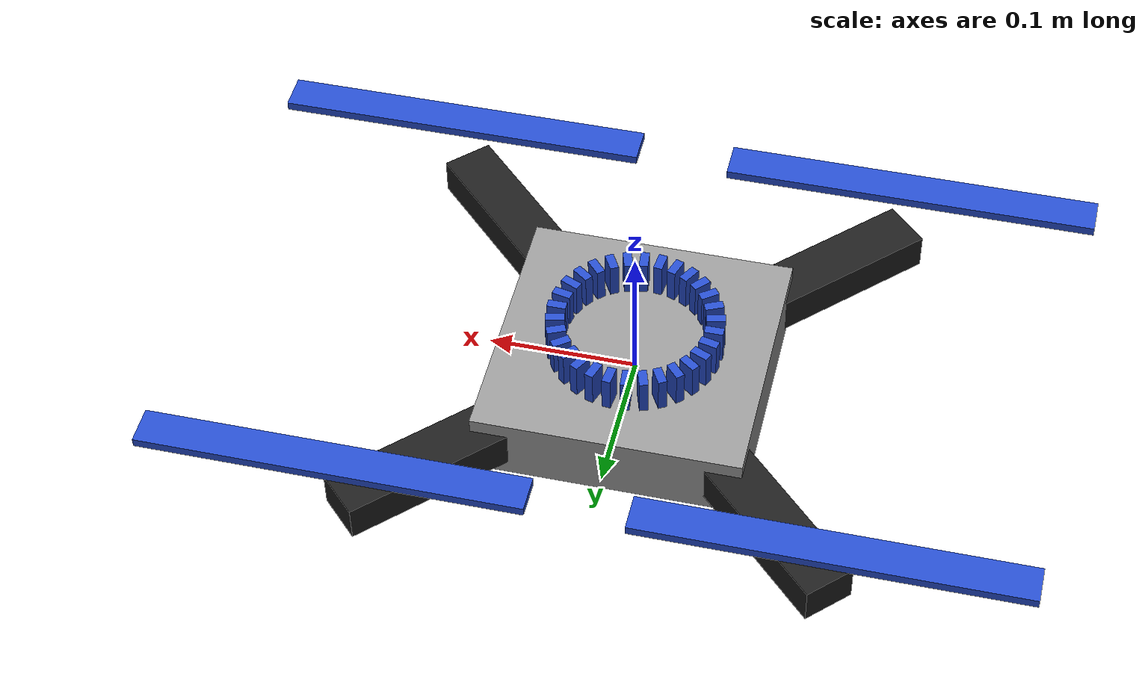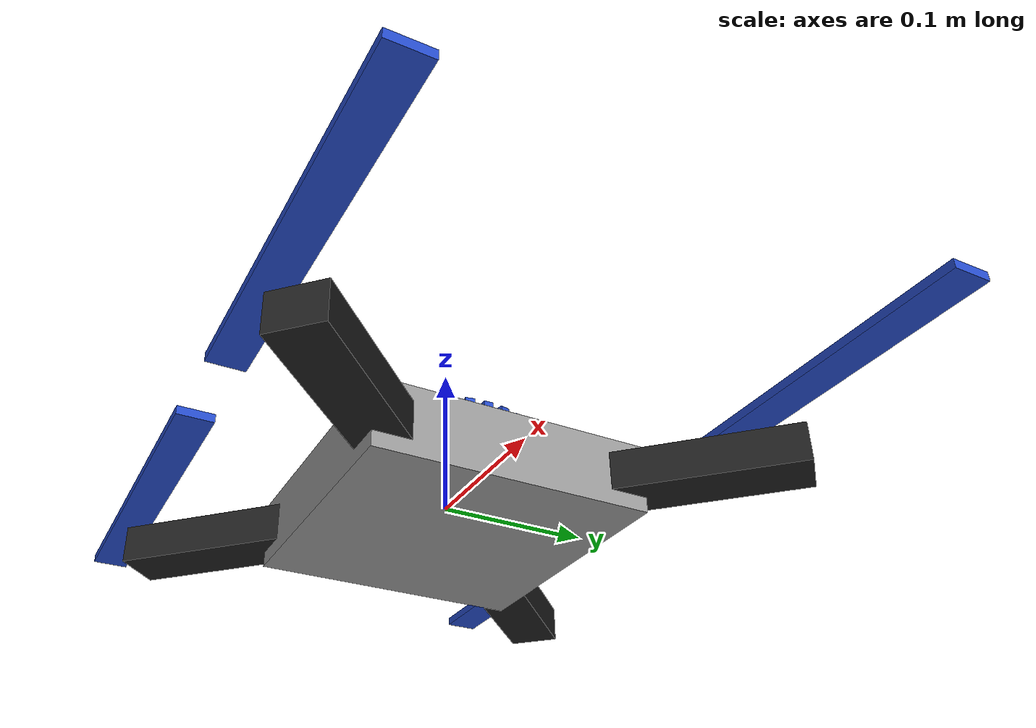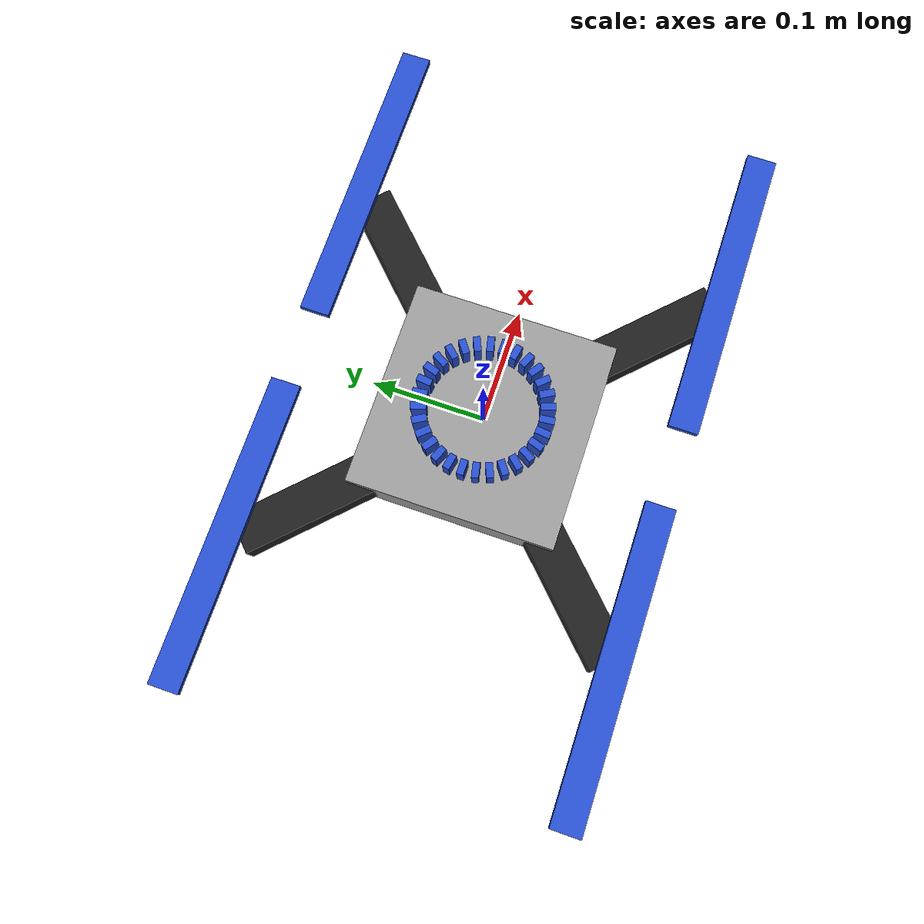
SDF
<?xml version="1.0" ?>

<sdf version="1.5">
  <model name="pendulum_quadcopter">
    <include>
      <uri>model://pendulum_quadcopter_base</uri>
      <name>pendulum_quadcopter_base</name>
      <pose>0 0 0 0 0 0</pose>
    </include>

    <include>
      <uri>model://pendulum_quadcopter_prop</uri>
      <name>pendulum_quadcopter_prop_0</name>
      <pose>0.1591 -0.1591 0.045 0 0 0</pose>
    </include>

    <joint name="pendulum_quadcopter_prop_0_joint" type="revolute">
      <parent>pendulum_quadcopter_base::platform_base</parent>
      <child>pendulum_quadcopter_prop_0::prop</child>
      <axis>
        <xyz>0 0 1</xyz>
        <limit>
          <lower>-1e+16</lower>
          <upper>1e+16</upper>
        </limit>
        <dynamics>
          <damping>0.00001</damping>
        </dynamics>
        <use_parent_model_frame>1</use_parent_model_frame>
      </axis>
    </joint>

    <plugin name="pendulum_quadcopter_prop_0_plugin" filename="librotors_gazebo_motor_model.so">
      <robotNamespace></robotNamespace>
      <jointName>pendulum_quadcopter_prop_0_joint</jointName>
      <linkName>pendulum_quadcopter_prop_0::prop</linkName>
      <turningDirection>ccw</turningDirection>
      <timeConstantUp>0.0125</timeConstantUp>
      <timeConstantDown>0.025</timeConstantDown>
      <maxRotVelocity>1000</maxRotVelocity>
      <motorConstant>8.599e-06</motorConstant>
      <momentConstant>0.1</momentConstant>
      <commandSubTopic>/gazebo/command/prop_speed</commandSubTopic>
      <motorNumber>0</motorNumber>
      <rotorDragCoefficient>0.000806428</rotorDragCoefficient>
      <rollingMomentCoefficient>1e-06</rollingMomentCoefficient>
      <motorSpeedPubTopic>prop_speed/0</motorSpeedPubTopic>
      <rotorVelocitySlowdownSim>10</rotorVelocitySlowdownSim>
    </plugin>

    <include>
      <uri>model://pendulum_quadcopter_prop</uri>
      <name>pendulum_quadcopter_prop_1</name>
      <pose>-0.1591 -0.1591 0.045 0 0 0</pose>
    </include>

    <joint name="pendulum_quadcopter_prop_1_joint" type="revolute">
      <parent>pendulum_quadcopter_base::platform_base</parent>
      <child>pendulum_quadcopter_prop_1::prop</child>
      <axis>
        <xyz>0 0 1</xyz>
        <limit>
          <lower>-1e+16</lower>
          <upper>1e+16</upper>
        </limit>
        <dynamics>
          <damping>0.00001</damping>
        </dynamics>
        <use_parent_model_frame>1</use_parent_model_frame>
      </axis>
    </joint>

    <plugin name="pendulum_quadcopter_prop_1_plugin" filename="librotors_gazebo_motor_model.so">
      <robotNamespace></robotNamespace>
      <jointName>pendulum_quadcopter_prop_1_joint</jointName>
      <linkName>pendulum_quadcopter_prop_1::prop</linkName>
      <turningDirection>cw</turningDirection>
      <timeConstantUp>0.0125</timeConstantUp>
      <timeConstantDown>0.025</timeConstantDown>
      <maxRotVelocity>1000</maxRotVelocity>
      <motorConstant>8.599e-06</motorConstant>
      <momentConstant>0.1</momentConstant>
      <commandSubTopic>/gazebo/command/prop_speed</commandSubTopic>
      <motorNumber>1</motorNumber>
      <rotorDragCoefficient>0.000806428</rotorDragCoefficient>
      <rollingMomentCoefficient>1e-06</rollingMomentCoefficient>
      <motorSpeedPubTopic>prop_speed/1</motorSpeedPubTopic>
      <rotorVelocitySlowdownSim>10</rotorVelocitySlowdownSim>
    </plugin>

    <include>
      <uri>model://pendulum_quadcopter_prop</uri>
      <name>pendulum_quadcopter_prop_2</name>
      <pose>-0.1591 0.1591 0.045 0 0 3.141592653589793</pose>
    </include>

    <joint name="pendulum_quadcopter_prop_2_joint" type="revolute">
      <parent>pendulum_quadcopter_base::platform_base</parent>
      <child>pendulum_quadcopter_prop_2::prop</child>
      <axis>
        <xyz>0 0 1</xyz>
        <limit>
          <lower>-1e+16</lower>
          <upper>1e+16</upper>
        </limit>
        <dynamics>
          <damping>0.00001</damping>
        </dynamics>
        <use_parent_model_frame>1</use_parent_model_frame>
      </axis>
    </joint>

    <plugin name="pendulum_quadcopter_prop_2_plugin" filename="librotors_gazebo_motor_model.so">
      <robotNamespace></robotNamespace>
      <jointName>pendulum_quadcopter_prop_2_joint</jointName>
      <linkName>pendulum_quadcopter_prop_2::prop</linkName>
      <turningDirection>ccw</turningDirection>
      <timeConstantUp>0.0125</timeConstantUp>
      <timeConstantDown>0.025</timeConstantDown>
      <maxRotVelocity>1000</maxRotVelocity>
      <motorConstant>8.599e-06</motorConstant>
      <momentConstant>0.1</momentConstant>
      <commandSubTopic>/gazebo/command/prop_speed</commandSubTopic>
      <motorNumber>2</motorNumber>
      <rotorDragCoefficient>0.000806428</rotorDragCoefficient>
      <rollingMomentCoefficient>1e-06</rollingMomentCoefficient>
      <motorSpeedPubTopic>prop_speed/2</motorSpeedPubTopic>
      <rotorVelocitySlowdownSim>10</rotorVelocitySlowdownSim>
    </plugin>

    <include>
      <uri>model://pendulum_quadcopter_prop</uri>
      <name>pendulum_quadcopter_prop_3</name>
      <pose>0.1591 0.1591 0.045 0 0 3.141592653589793</pose>
    </include>

    <joint name="pendulum_quadcopter_prop_3_joint" type="revolute">
      <parent>pendulum_quadcopter_base::platform_base</parent>
      <child>pendulum_quadcopter_prop_3::prop</child>
      <axis>
        <xyz>0 0 1</xyz>
        <limit>
          <lower>-1e+16</lower>
          <upper>1e+16</upper>
        </limit>
        <dynamics>
          <damping>0.00001</damping>
        </dynamics>
        <use_parent_model_frame>1</use_parent_model_frame>
      </axis>
    </joint>

    <plugin name="pendulum_quadcopter_prop_3_plugin" filename="librotors_gazebo_motor_model.so">
      <robotNamespace></robotNamespace>
      <jointName>pendulum_quadcopter_prop_3_joint</jointName>
      <linkName>pendulum_quadcopter_prop_3::prop</linkName>
      <turningDirection>cw</turningDirection>
      <timeConstantUp>0.0125</timeConstantUp>
      <timeConstantDown>0.025</timeConstantDown>
      <maxRotVelocity>1000</maxRotVelocity>
      <motorConstant>8.599e-06</motorConstant>
      <momentConstant>0.1</momentConstant>
      <commandSubTopic>/gazebo/command/prop_speed</commandSubTopic>
      <motorNumber>3</motorNumber>
      <rotorDragCoefficient>0.000806428</rotorDragCoefficient>
      <rollingMomentCoefficient>1e-06</rollingMomentCoefficient>
      <motorSpeedPubTopic>prop_speed/3</motorSpeedPubTopic>
      <rotorVelocitySlowdownSim>10</rotorVelocitySlowdownSim>
    </plugin>

    <plugin name="ArduRotorNormPlugin" filename="libArduRotorNormPlugin.so">
      <fdm_addr>127.0.0.1</fdm_addr>
      <fdm_port_in>9002</fdm_port_in>
      <fdm_port_out>9003</fdm_port_out>
      <modelXYZToAirplaneXForwardZDown>0 0 0 3.141593 0 0</modelXYZToAirplaneXForwardZDown>
      <gazeboXYZToNED>0 0 0 3.141593 0 0</gazeboXYZToNED>
      <motor_num>4</motor_num>
      <servo_num>0</servo_num>
      <motor_pub>/gazebo/command/prop_speed</motor_pub>
      <imuName>pendulum_quadcopter_base::imu_link::imu_sensor</imuName>
      <connectionTimeoutMaxCount>5</connectionTimeoutMaxCount>
    </plugin>
  </model>
</sdf>

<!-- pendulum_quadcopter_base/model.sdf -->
<sdf version="1.5">
  <model name="pendulum_quadcopter_platform">
    <link name="platform_base">
      <pose>0 0 0 0 0 0</pose>
      <inertial>
        <pose>0 0 0 0 0 0</pose>
        <mass>1.1</mass>
        <inertia>
          <ixx>0.018</ixx>
          <iyy>0.018</iyy>
          <izz>0.032</izz>
          <ixy>0</ixy>
          <ixz>0</ixz>
          <iyz>0</iyz>
        </inertia>
      </inertial>

      <collision name="body_collision">
        <pose>0 0 0 0 0 0</pose>
        <geometry>
          <box>
            <size>0.18 0.18 0.045</size>
          </box>
        </geometry>
        <surface>
          <contact>
            <ode>
              <max_vel>100.0</max_vel>
              <min_depth>0.001</min_depth>
            </ode>
          </contact>
          <friction>
            <ode>
              <mu>100000.0</mu>
              <mu2>100000.0</mu2>
            </ode>
          </friction>
        </surface>
      </collision>
      <visual name="body_visual">
        <pose>0 0 0 0 0 0</pose>
        <geometry>
          <box>
            <size>0.18 0.18 0.045</size>
          </box>
        </geometry>
        <material>
          <script>
            <name>Gazebo/Grey</name>
          </script>
        </material>
      </visual>

      <collision name="arm_positive_collision">
        <pose>0 0 0 0 0 0.7853981633974483</pose>
        <geometry>
          <box>
            <size>0.45 0.035 0.025</size>
          </box>
        </geometry>
      </collision>
      <visual name="arm_positive_visual">
        <pose>0 0 0 0 0 0.7853981633974483</pose>
        <geometry>
          <box>
            <size>0.45 0.035 0.025</size>
          </box>
        </geometry>
        <material>
          <script>
            <name>Gazebo/Black</name>
          </script>
        </material>
      </visual>

      <collision name="arm_negative_collision">
        <pose>0 0 0 0 0 -0.7853981633974483</pose>
        <geometry>
          <box>
            <size>0.45 0.035 0.025</size>
          </box>
        </geometry>
      </collision>
      <visual name="arm_negative_visual">
        <pose>0 0 0 0 0 -0.7853981633974483</pose>
        <geometry>
          <box>
            <size>0.45 0.035 0.025</size>
          </box>
        </geometry>
        <material>
          <script>
            <name>Gazebo/Black</name>
          </script>
        </material>
      </visual>

      <collision name="pendulum_cup_collision_0">
        <pose>0.053000000000000005 0.0 0.035 0 0 0.0</pose>
        <geometry>
          <box>
            <size>0.012765338149086527 0.006 0.025</size>
          </box>
        </geometry>
        <surface>
          <contact>
            <ode>
              <max_vel>100.0</max_vel>
              <min_depth>0.001</min_depth>
            </ode>
          </contact>
          <friction>
            <ode>
              <mu>10.0</mu>
              <mu2>10.0</mu2>
            </ode>
          </friction>
        </surface>
      </collision>
      <visual name="pendulum_cup_visual_0">
        <pose>0.053000000000000005 0.0 0.035 0 0 0.0</pose>
        <geometry>
          <box>
            <size>0.012765338149086527 0.006 0.025</size>
          </box>
        </geometry>
        <material>
          <script>
            <name>Gazebo/Blue</name>
          </script>
        </material>
      </visual>

      <collision name="pendulum_cup_collision_1">
        <pose>0.05184182283889171 0.011019319613341245 0.035 0 0 0.20943951023931953</pose>
        <geometry>
          <box>
            <size>0.012765338149086527 0.006 0.025</size>
          </box>
        </geometry>
        <surface>
          <contact>
            <ode>
              <max_vel>100.0</max_vel>
              <min_depth>0.001</min_depth>
            </ode>
          </contact>
          <friction>
            <ode>
              <mu>10.0</mu>
              <mu2>10.0</mu2>
            </ode>
          </friction>
        </surface>
      </collision>
      <visual name="pendulum_cup_visual_1">
        <pose>0.05184182283889171 0.011019319613341245 0.035 0 0 0.20943951023931953</pose>
        <geometry>
          <box>
            <size>0.012765338149086527 0.006 0.025</size>
          </box>
        </geometry>
        <material>
          <script>
            <name>Gazebo/Blue</name>
          </script>
        </material>
      </visual>

      <collision name="pendulum_cup_collision_2">
        <pose>0.04841790925505785 0.02155704208301741 0.035 0 0 0.41887902047863906</pose>
        <geometry>
          <box>
            <size>0.012765338149086527 0.006 0.025</size>
          </box>
        </geometry>
        <surface>
          <contact>
            <ode>
              <max_vel>100.0</max_vel>
              <min_depth>0.001</min_depth>
            </ode>
          </contact>
          <friction>
            <ode>
              <mu>10.0</mu>
              <mu2>10.0</mu2>
            </ode>
          </friction>
        </surface>
      </collision>
      <visual name="pendulum_cup_visual_2">
        <pose>0.04841790925505785 0.02155704208301741 0.035 0 0 0.41887902047863906</pose>
        <geometry>
          <box>
            <size>0.012765338149086527 0.006 0.025</size>
          </box>
        </geometry>
        <material>
          <script>
            <name>Gazebo/Blue</name>
          </script>
        </material>
      </visual>

      <collision name="pendulum_cup_collision_3">
        <pose>0.04287790070187222 0.03115261837150108 0.035 0 0 0.6283185307179586</pose>
        <geometry>
          <box>
            <size>0.012765338149086527 0.006 0.025</size>
          </box>
        </geometry>
        <surface>
          <contact>
            <ode>
              <max_vel>100.0</max_vel>
              <min_depth>0.001</min_depth>
            </ode>
          </contact>
          <friction>
            <ode>
              <mu>10.0</mu>
              <mu2>10.0</mu2>
            </ode>
          </friction>
        </surface>
      </collision>
      <visual name="pendulum_cup_visual_3">
        <pose>0.04287790070187222 0.03115261837150108 0.035 0 0 0.6283185307179586</pose>
        <geometry>
          <box>
            <size>0.012765338149086527 0.006 0.025</size>
          </box>
        </geometry>
        <material>
          <script>
            <name>Gazebo/Blue</name>
          </script>
        </material>
      </visual>

      <collision name="pendulum_cup_collision_4">
        <pose>0.03546392213701949 0.03938667575030189 0.035 0 0 0.8377580409572781</pose>
        <geometry>
          <box>
            <size>0.012765338149086527 0.006 0.025</size>
          </box>
        </geometry>
        <surface>
          <contact>
            <ode>
              <max_vel>100.0</max_vel>
              <min_depth>0.001</min_depth>
            </ode>
          </contact>
          <friction>
            <ode>
              <mu>10.0</mu>
              <mu2>10.0</mu2>
            </ode>
          </friction>
        </surface>
      </collision>
      <visual name="pendulum_cup_visual_4">
        <pose>0.03546392213701949 0.03938667575030189 0.035 0 0 0.8377580409572781</pose>
        <geometry>
          <box>
            <size>0.012765338149086527 0.006 0.025</size>
          </box>
        </geometry>
        <material>
          <script>
            <name>Gazebo/Blue</name>
          </script>
        </material>
      </visual>

      <collision name="pendulum_cup_collision_5">
        <pose>0.02650000000000001 0.04589934640057525 0.035 0 0 1.0471975511965976</pose>
        <geometry>
          <box>
            <size>0.012765338149086527 0.006 0.025</size>
          </box>
        </geometry>
        <surface>
          <contact>
            <ode>
              <max_vel>100.0</max_vel>
              <min_depth>0.001</min_depth>
            </ode>
          </contact>
          <friction>
            <ode>
              <mu>10.0</mu>
              <mu2>10.0</mu2>
            </ode>
          </friction>
        </surface>
      </collision>
      <visual name="pendulum_cup_visual_5">
        <pose>0.02650000000000001 0.04589934640057525 0.035 0 0 1.0471975511965976</pose>
        <geometry>
          <box>
            <size>0.012765338149086527 0.006 0.025</size>
          </box>
        </geometry>
        <material>
          <script>
            <name>Gazebo/Blue</name>
          </script>
        </material>
      </visual>

      <collision name="pendulum_cup_collision_6">
        <pose>0.016377900701872217 0.050405995363643145 0.035 0 0 1.2566370614359172</pose>
        <geometry>
          <box>
            <size>0.012765338149086527 0.006 0.025</size>
          </box>
        </geometry>
        <surface>
          <contact>
            <ode>
              <max_vel>100.0</max_vel>
              <min_depth>0.001</min_depth>
            </ode>
          </contact>
          <friction>
            <ode>
              <mu>10.0</mu>
              <mu2>10.0</mu2>
            </ode>
          </friction>
        </surface>
      </collision>
      <visual name="pendulum_cup_visual_6">
        <pose>0.016377900701872217 0.050405995363643145 0.035 0 0 1.2566370614359172</pose>
        <geometry>
          <box>
            <size>0.012765338149086527 0.006 0.025</size>
          </box>
        </geometry>
        <material>
          <script>
            <name>Gazebo/Blue</name>
          </script>
        </material>
      </visual>

      <collision name="pendulum_cup_collision_7">
        <pose>0.0055400085531856335 0.05270966045451849 0.035 0 0 1.4660765716752369</pose>
        <geometry>
          <box>
            <size>0.012765338149086527 0.006 0.025</size>
          </box>
        </geometry>
        <surface>
          <contact>
            <ode>
              <max_vel>100.0</max_vel>
              <min_depth>0.001</min_depth>
            </ode>
          </contact>
          <friction>
            <ode>
              <mu>10.0</mu>
              <mu2>10.0</mu2>
            </ode>
          </friction>
        </surface>
      </collision>
      <visual name="pendulum_cup_visual_7">
        <pose>0.0055400085531856335 0.05270966045451849 0.035 0 0 1.4660765716752369</pose>
        <geometry>
          <box>
            <size>0.012765338149086527 0.006 0.025</size>
          </box>
        </geometry>
        <material>
          <script>
            <name>Gazebo/Blue</name>
          </script>
        </material>
      </visual>

      <collision name="pendulum_cup_collision_8">
        <pose>-0.005540008553185627 0.0527096604545185 0.035 0 0 1.6755160819145563</pose>
        <geometry>
          <box>
            <size>0.012765338149086527 0.006 0.025</size>
          </box>
        </geometry>
        <surface>
          <contact>
            <ode>
              <max_vel>100.0</max_vel>
              <min_depth>0.001</min_depth>
            </ode>
          </contact>
          <friction>
            <ode>
              <mu>10.0</mu>
              <mu2>10.0</mu2>
            </ode>
          </friction>
        </surface>
      </collision>
      <visual name="pendulum_cup_visual_8">
        <pose>-0.005540008553185627 0.0527096604545185 0.035 0 0 1.6755160819145563</pose>
        <geometry>
          <box>
            <size>0.012765338149086527 0.006 0.025</size>
          </box>
        </geometry>
        <material>
          <script>
            <name>Gazebo/Blue</name>
          </script>
        </material>
      </visual>

      <collision name="pendulum_cup_collision_9">
        <pose>-0.01637790070187221 0.050405995363643145 0.035 0 0 1.8849555921538759</pose>
        <geometry>
          <box>
            <size>0.012765338149086527 0.006 0.025</size>
          </box>
        </geometry>
        <surface>
          <contact>
            <ode>
              <max_vel>100.0</max_vel>
              <min_depth>0.001</min_depth>
            </ode>
          </contact>
          <friction>
            <ode>
              <mu>10.0</mu>
              <mu2>10.0</mu2>
            </ode>
          </friction>
        </surface>
      </collision>
      <visual name="pendulum_cup_visual_9">
        <pose>-0.01637790070187221 0.050405995363643145 0.035 0 0 1.8849555921538759</pose>
        <geometry>
          <box>
            <size>0.012765338149086527 0.006 0.025</size>
          </box>
        </geometry>
        <material>
          <script>
            <name>Gazebo/Blue</name>
          </script>
        </material>
      </visual>

      <collision name="pendulum_cup_collision_10">
        <pose>-0.026499999999999992 0.045899346400575254 0.035 0 0 2.0943951023931953</pose>
        <geometry>
          <box>
            <size>0.012765338149086527 0.006 0.025</size>
          </box>
        </geometry>
        <surface>
          <contact>
            <ode>
              <max_vel>100.0</max_vel>
              <min_depth>0.001</min_depth>
            </ode>
          </contact>
          <friction>
            <ode>
              <mu>10.0</mu>
              <mu2>10.0</mu2>
            </ode>
          </friction>
        </surface>
      </collision>
      <visual name="pendulum_cup_visual_10">
        <pose>-0.026499999999999992 0.045899346400575254 0.035 0 0 2.0943951023931953</pose>
        <geometry>
          <box>
            <size>0.012765338149086527 0.006 0.025</size>
          </box>
        </geometry>
        <material>
          <script>
            <name>Gazebo/Blue</name>
          </script>
        </material>
      </visual>

      <collision name="pendulum_cup_collision_11">
        <pose>-0.035463922137019474 0.039386675750301914 0.035 0 0 2.3038346126325147</pose>
        <geometry>
          <box>
            <size>0.012765338149086527 0.006 0.025</size>
          </box>
        </geometry>
        <surface>
          <contact>
            <ode>
              <max_vel>100.0</max_vel>
              <min_depth>0.001</min_depth>
            </ode>
          </contact>
          <friction>
            <ode>
              <mu>10.0</mu>
              <mu2>10.0</mu2>
            </ode>
          </friction>
        </surface>
      </collision>
      <visual name="pendulum_cup_visual_11">
        <pose>-0.035463922137019474 0.039386675750301914 0.035 0 0 2.3038346126325147</pose>
        <geometry>
          <box>
            <size>0.012765338149086527 0.006 0.025</size>
          </box>
        </geometry>
        <material>
          <script>
            <name>Gazebo/Blue</name>
          </script>
        </material>
      </visual>

      <collision name="pendulum_cup_collision_12">
        <pose>-0.04287790070187222 0.031152618371501087 0.035 0 0 2.5132741228718345</pose>
        <geometry>
          <box>
            <size>0.012765338149086527 0.006 0.025</size>
          </box>
        </geometry>
        <surface>
          <contact>
            <ode>
              <max_vel>100.0</max_vel>
              <min_depth>0.001</min_depth>
            </ode>
          </contact>
          <friction>
            <ode>
              <mu>10.0</mu>
              <mu2>10.0</mu2>
            </ode>
          </friction>
        </surface>
      </collision>
      <visual name="pendulum_cup_visual_12">
        <pose>-0.04287790070187222 0.031152618371501087 0.035 0 0 2.5132741228718345</pose>
        <geometry>
          <box>
            <size>0.012765338149086527 0.006 0.025</size>
          </box>
        </geometry>
        <material>
          <script>
            <name>Gazebo/Blue</name>
          </script>
        </material>
      </visual>

      <collision name="pendulum_cup_collision_13">
        <pose>-0.04841790925505786 0.021557042083017404 0.035 0 0 2.7227136331111543</pose>
        <geometry>
          <box>
            <size>0.012765338149086527 0.006 0.025</size>
          </box>
        </geometry>
        <surface>
          <contact>
            <ode>
              <max_vel>100.0</max_vel>
              <min_depth>0.001</min_depth>
            </ode>
          </contact>
          <friction>
            <ode>
              <mu>10.0</mu>
              <mu2>10.0</mu2>
            </ode>
          </friction>
        </surface>
      </collision>
      <visual name="pendulum_cup_visual_13">
        <pose>-0.04841790925505786 0.021557042083017404 0.035 0 0 2.7227136331111543</pose>
        <geometry>
          <box>
            <size>0.012765338149086527 0.006 0.025</size>
          </box>
        </geometry>
        <material>
          <script>
            <name>Gazebo/Blue</name>
          </script>
        </material>
      </visual>

      <collision name="pendulum_cup_collision_14">
        <pose>-0.05184182283889171 0.011019319613341245 0.035 0 0 2.9321531433504737</pose>
        <geometry>
          <box>
            <size>0.012765338149086527 0.006 0.025</size>
          </box>
        </geometry>
        <surface>
          <contact>
            <ode>
              <max_vel>100.0</max_vel>
              <min_depth>0.001</min_depth>
            </ode>
          </contact>
          <friction>
            <ode>
              <mu>10.0</mu>
              <mu2>10.0</mu2>
            </ode>
          </friction>
        </surface>
      </collision>
      <visual name="pendulum_cup_visual_14">
        <pose>-0.05184182283889171 0.011019319613341245 0.035 0 0 2.9321531433504737</pose>
        <geometry>
          <box>
            <size>0.012765338149086527 0.006 0.025</size>
          </box>
        </geometry>
        <material>
          <script>
            <name>Gazebo/Blue</name>
          </script>
        </material>
      </visual>

      <collision name="pendulum_cup_collision_15">
        <pose>-0.053000000000000005 3.00273561575343e-17 0.035 0 0 3.1415926535897927</pose>
        <geometry>
          <box>
            <size>0.012765338149086527 0.006 0.025</size>
          </box>
        </geometry>
        <surface>
          <contact>
            <ode>
              <max_vel>100.0</max_vel>
              <min_depth>0.001</min_depth>
            </ode>
          </contact>
          <friction>
            <ode>
              <mu>10.0</mu>
              <mu2>10.0</mu2>
            </ode>
          </friction>
        </surface>
      </collision>
      <visual name="pendulum_cup_visual_15">
        <pose>-0.053000000000000005 3.00273561575343e-17 0.035 0 0 3.1415926535897927</pose>
        <geometry>
          <box>
            <size>0.012765338149086527 0.006 0.025</size>
          </box>
        </geometry>
        <material>
          <script>
            <name>Gazebo/Blue</name>
          </script>
        </material>
      </visual>

      <collision name="pendulum_cup_collision_16">
        <pose>-0.05184182283889171 -0.011019319613341232 0.035 0 0 3.3510321638291125</pose>
        <geometry>
          <box>
            <size>0.012765338149086527 0.006 0.025</size>
          </box>
        </geometry>
        <surface>
          <contact>
            <ode>
              <max_vel>100.0</max_vel>
              <min_depth>0.001</min_depth>
            </ode>
          </contact>
          <friction>
            <ode>
              <mu>10.0</mu>
              <mu2>10.0</mu2>
            </ode>
          </friction>
        </surface>
      </collision>
      <visual name="pendulum_cup_visual_16">
        <pose>-0.05184182283889171 -0.011019319613341232 0.035 0 0 3.3510321638291125</pose>
        <geometry>
          <box>
            <size>0.012765338149086527 0.006 0.025</size>
          </box>
        </geometry>
        <material>
          <script>
            <name>Gazebo/Blue</name>
          </script>
        </material>
      </visual>

      <collision name="pendulum_cup_collision_17">
        <pose>-0.04841790925505785 -0.021557042083017414 0.035 0 0 3.5604716740684323</pose>
        <geometry>
          <box>
            <size>0.012765338149086527 0.006 0.025</size>
          </box>
        </geometry>
        <surface>
          <contact>
            <ode>
              <max_vel>100.0</max_vel>
              <min_depth>0.001</min_depth>
            </ode>
          </contact>
          <friction>
            <ode>
              <mu>10.0</mu>
              <mu2>10.0</mu2>
            </ode>
          </friction>
        </surface>
      </collision>
      <visual name="pendulum_cup_visual_17">
        <pose>-0.04841790925505785 -0.021557042083017414 0.035 0 0 3.5604716740684323</pose>
        <geometry>
          <box>
            <size>0.012765338149086527 0.006 0.025</size>
          </box>
        </geometry>
        <material>
          <script>
            <name>Gazebo/Blue</name>
          </script>
        </material>
      </visual>

      <collision name="pendulum_cup_collision_18">
        <pose>-0.042877900701872224 -0.031152618371501073 0.035 0 0 3.7699111843077517</pose>
        <geometry>
          <box>
            <size>0.012765338149086527 0.006 0.025</size>
          </box>
        </geometry>
        <surface>
          <contact>
            <ode>
              <max_vel>100.0</max_vel>
              <min_depth>0.001</min_depth>
            </ode>
          </contact>
          <friction>
            <ode>
              <mu>10.0</mu>
              <mu2>10.0</mu2>
            </ode>
          </friction>
        </surface>
      </collision>
      <visual name="pendulum_cup_visual_18">
        <pose>-0.042877900701872224 -0.031152618371501073 0.035 0 0 3.7699111843077517</pose>
        <geometry>
          <box>
            <size>0.012765338149086527 0.006 0.025</size>
          </box>
        </geometry>
        <material>
          <script>
            <name>Gazebo/Blue</name>
          </script>
        </material>
      </visual>

      <collision name="pendulum_cup_collision_19">
        <pose>-0.0354639221370195 -0.039386675750301886 0.035 0 0 3.979350694547071</pose>
        <geometry>
          <box>
            <size>0.012765338149086527 0.006 0.025</size>
          </box>
        </geometry>
        <surface>
          <contact>
            <ode>
              <max_vel>100.0</max_vel>
              <min_depth>0.001</min_depth>
            </ode>
          </contact>
          <friction>
            <ode>
              <mu>10.0</mu>
              <mu2>10.0</mu2>
            </ode>
          </friction>
        </surface>
      </collision>
      <visual name="pendulum_cup_visual_19">
        <pose>-0.0354639221370195 -0.039386675750301886 0.035 0 0 3.979350694547071</pose>
        <geometry>
          <box>
            <size>0.012765338149086527 0.006 0.025</size>
          </box>
        </geometry>
        <material>
          <script>
            <name>Gazebo/Blue</name>
          </script>
        </material>
      </visual>

      <collision name="pendulum_cup_collision_20">
        <pose>-0.026500000000000027 -0.04589934640057524 0.035 0 0 4.1887902047863905</pose>
        <geometry>
          <box>
            <size>0.012765338149086527 0.006 0.025</size>
          </box>
        </geometry>
        <surface>
          <contact>
            <ode>
              <max_vel>100.0</max_vel>
              <min_depth>0.001</min_depth>
            </ode>
          </contact>
          <friction>
            <ode>
              <mu>10.0</mu>
              <mu2>10.0</mu2>
            </ode>
          </friction>
        </surface>
      </collision>
      <visual name="pendulum_cup_visual_20">
        <pose>-0.026500000000000027 -0.04589934640057524 0.035 0 0 4.1887902047863905</pose>
        <geometry>
          <box>
            <size>0.012765338149086527 0.006 0.025</size>
          </box>
        </geometry>
        <material>
          <script>
            <name>Gazebo/Blue</name>
          </script>
        </material>
      </visual>

      <collision name="pendulum_cup_collision_21">
        <pose>-0.01637790070187222 -0.050405995363643145 0.035 0 0 4.39822971502571</pose>
        <geometry>
          <box>
            <size>0.012765338149086527 0.006 0.025</size>
          </box>
        </geometry>
        <surface>
          <contact>
            <ode>
              <max_vel>100.0</max_vel>
              <min_depth>0.001</min_depth>
            </ode>
          </contact>
          <friction>
            <ode>
              <mu>10.0</mu>
              <mu2>10.0</mu2>
            </ode>
          </friction>
        </surface>
      </collision>
      <visual name="pendulum_cup_visual_21">
        <pose>-0.01637790070187222 -0.050405995363643145 0.035 0 0 4.39822971502571</pose>
        <geometry>
          <box>
            <size>0.012765338149086527 0.006 0.025</size>
          </box>
        </geometry>
        <material>
          <script>
            <name>Gazebo/Blue</name>
          </script>
        </material>
      </visual>

      <collision name="pendulum_cup_collision_22">
        <pose>-0.005540008553185675 -0.05270966045451849 0.035 0 0 4.607669225265029</pose>
        <geometry>
          <box>
            <size>0.012765338149086527 0.006 0.025</size>
          </box>
        </geometry>
        <surface>
          <contact>
            <ode>
              <max_vel>100.0</max_vel>
              <min_depth>0.001</min_depth>
            </ode>
          </contact>
          <friction>
            <ode>
              <mu>10.0</mu>
              <mu2>10.0</mu2>
            </ode>
          </friction>
        </surface>
      </collision>
      <visual name="pendulum_cup_visual_22">
        <pose>-0.005540008553185675 -0.05270966045451849 0.035 0 0 4.607669225265029</pose>
        <geometry>
          <box>
            <size>0.012765338149086527 0.006 0.025</size>
          </box>
        </geometry>
        <material>
          <script>
            <name>Gazebo/Blue</name>
          </script>
        </material>
      </visual>

      <collision name="pendulum_cup_collision_23">
        <pose>0.005540008553185609 -0.0527096604545185 0.035 0 0 4.817108735504349</pose>
        <geometry>
          <box>
            <size>0.012765338149086527 0.006 0.025</size>
          </box>
        </geometry>
        <surface>
          <contact>
            <ode>
              <max_vel>100.0</max_vel>
              <min_depth>0.001</min_depth>
            </ode>
          </contact>
          <friction>
            <ode>
              <mu>10.0</mu>
              <mu2>10.0</mu2>
            </ode>
          </friction>
        </surface>
      </collision>
      <visual name="pendulum_cup_visual_23">
        <pose>0.005540008553185609 -0.0527096604545185 0.035 0 0 4.817108735504349</pose>
        <geometry>
          <box>
            <size>0.012765338149086527 0.006 0.025</size>
          </box>
        </geometry>
        <material>
          <script>
            <name>Gazebo/Blue</name>
          </script>
        </material>
      </visual>

      <collision name="pendulum_cup_collision_24">
        <pose>0.016377900701872204 -0.050405995363643145 0.035 0 0 5.026548245743669</pose>
        <geometry>
          <box>
            <size>0.012765338149086527 0.006 0.025</size>
          </box>
        </geometry>
        <surface>
          <contact>
            <ode>
              <max_vel>100.0</max_vel>
              <min_depth>0.001</min_depth>
            </ode>
          </contact>
          <friction>
            <ode>
              <mu>10.0</mu>
              <mu2>10.0</mu2>
            </ode>
          </friction>
        </surface>
      </collision>
      <visual name="pendulum_cup_visual_24">
        <pose>0.016377900701872204 -0.050405995363643145 0.035 0 0 5.026548245743669</pose>
        <geometry>
          <box>
            <size>0.012765338149086527 0.006 0.025</size>
          </box>
        </geometry>
        <material>
          <script>
            <name>Gazebo/Blue</name>
          </script>
        </material>
      </visual>

      <collision name="pendulum_cup_collision_25">
        <pose>0.02650000000000001 -0.04589934640057525 0.035 0 0 5.235987755982989</pose>
        <geometry>
          <box>
            <size>0.012765338149086527 0.006 0.025</size>
          </box>
        </geometry>
        <surface>
          <contact>
            <ode>
              <max_vel>100.0</max_vel>
              <min_depth>0.001</min_depth>
            </ode>
          </contact>
          <friction>
            <ode>
              <mu>10.0</mu>
              <mu2>10.0</mu2>
            </ode>
          </friction>
        </surface>
      </collision>
      <visual name="pendulum_cup_visual_25">
        <pose>0.02650000000000001 -0.04589934640057525 0.035 0 0 5.235987755982989</pose>
        <geometry>
          <box>
            <size>0.012765338149086527 0.006 0.025</size>
          </box>
        </geometry>
        <material>
          <script>
            <name>Gazebo/Blue</name>
          </script>
        </material>
      </visual>

      <collision name="pendulum_cup_collision_26">
        <pose>0.0354639221370195 -0.039386675750301886 0.035 0 0 5.445427266222309</pose>
        <geometry>
          <box>
            <size>0.012765338149086527 0.006 0.025</size>
          </box>
        </geometry>
        <surface>
          <contact>
            <ode>
              <max_vel>100.0</max_vel>
              <min_depth>0.001</min_depth>
            </ode>
          </contact>
          <friction>
            <ode>
              <mu>10.0</mu>
              <mu2>10.0</mu2>
            </ode>
          </friction>
        </surface>
      </collision>
      <visual name="pendulum_cup_visual_26">
        <pose>0.0354639221370195 -0.039386675750301886 0.035 0 0 5.445427266222309</pose>
        <geometry>
          <box>
            <size>0.012765338149086527 0.006 0.025</size>
          </box>
        </geometry>
        <material>
          <script>
            <name>Gazebo/Blue</name>
          </script>
        </material>
      </visual>

      <collision name="pendulum_cup_collision_27">
        <pose>0.04287790070187222 -0.03115261837150109 0.035 0 0 5.654866776461628</pose>
        <geometry>
          <box>
            <size>0.012765338149086527 0.006 0.025</size>
          </box>
        </geometry>
        <surface>
          <contact>
            <ode>
              <max_vel>100.0</max_vel>
              <min_depth>0.001</min_depth>
            </ode>
          </contact>
          <friction>
            <ode>
              <mu>10.0</mu>
              <mu2>10.0</mu2>
            </ode>
          </friction>
        </surface>
      </collision>
      <visual name="pendulum_cup_visual_27">
        <pose>0.04287790070187222 -0.03115261837150109 0.035 0 0 5.654866776461628</pose>
        <geometry>
          <box>
            <size>0.012765338149086527 0.006 0.025</size>
          </box>
        </geometry>
        <material>
          <script>
            <name>Gazebo/Blue</name>
          </script>
        </material>
      </visual>

      <collision name="pendulum_cup_collision_28">
        <pose>0.04841790925505786 -0.02155704208301741 0.035 0 0 5.8643062867009474</pose>
        <geometry>
          <box>
            <size>0.012765338149086527 0.006 0.025</size>
          </box>
        </geometry>
        <surface>
          <contact>
            <ode>
              <max_vel>100.0</max_vel>
              <min_depth>0.001</min_depth>
            </ode>
          </contact>
          <friction>
            <ode>
              <mu>10.0</mu>
              <mu2>10.0</mu2>
            </ode>
          </friction>
        </surface>
      </collision>
      <visual name="pendulum_cup_visual_28">
        <pose>0.04841790925505786 -0.02155704208301741 0.035 0 0 5.8643062867009474</pose>
        <geometry>
          <box>
            <size>0.012765338149086527 0.006 0.025</size>
          </box>
        </geometry>
        <material>
          <script>
            <name>Gazebo/Blue</name>
          </script>
        </material>
      </visual>

      <collision name="pendulum_cup_collision_29">
        <pose>0.05184182283889171 -0.011019319613341226 0.035 0 0 6.073745796940267</pose>
        <geometry>
          <box>
            <size>0.012765338149086527 0.006 0.025</size>
          </box>
        </geometry>
        <surface>
          <contact>
            <ode>
              <max_vel>100.0</max_vel>
              <min_depth>0.001</min_depth>
            </ode>
          </contact>
          <friction>
            <ode>
              <mu>10.0</mu>
              <mu2>10.0</mu2>
            </ode>
          </friction>
        </surface>
      </collision>
      <visual name="pendulum_cup_visual_29">
        <pose>0.05184182283889171 -0.011019319613341226 0.035 0 0 6.073745796940267</pose>
        <geometry>
          <box>
            <size>0.012765338149086527 0.006 0.025</size>
          </box>
        </geometry>
        <material>
          <script>
            <name>Gazebo/Blue</name>
          </script>
        </material>
      </visual>

    </link>

    <link name="imu_link">
      <inertial>
        <pose>0 0 0 0 0 0</pose>
        <mass>0.15</mass>
        <inertia>
          <ixx>0.00001</ixx>
          <ixy>0</ixy>
          <ixz>0</ixz>
          <iyy>0.00002</iyy>
          <iyz>0</iyz>
          <izz>0.00002</izz>
        </inertia>
      </inertial>
      <sensor name="imu_sensor" type="imu">
        <pose>0 0 0 3.141593 0 0</pose>
        <always_on>1</always_on>
        <update_rate>1000.0</update_rate>
        <topic>__default_topic__</topic>
      </sensor>
    </link>

    <joint name="imu_joint" type="fixed">
      <parent>platform_base</parent>
      <child>imu_link</child>
    </joint>
  </model>
</sdf>

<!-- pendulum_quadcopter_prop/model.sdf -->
<sdf version="1.5">
  <model name="pendulum_quadcopter_prop">
    <link name="prop">
      <pose>0 0 0 0 0 0</pose>
      <inertial>
        <pose>0 0 0 0 0 0</pose>
        <mass>0.025</mass>
        <inertia>
          <ixx>1.3770833333333338e-06</ixx>
          <ixy>0</ixy>
          <ixz>0</ixz>
          <iyy>0.00013448333333333334</iyy>
          <iyz>0</iyz>
          <izz>0.00013571041666666668</izz>
        </inertia>
      </inertial>
      <collision name="rotor_collision">
        <pose>0 0 0 0 0 0</pose>
        <geometry>
          <box>
            <size>0.254 0.025 0.006</size>
          </box>
        </geometry>
        <surface>
          <contact>
            <ode />
          </contact>
          <friction>
            <ode />
          </friction>
        </surface>
      </collision>
      <visual name="prop_visual">
        <pose>0 0 0 0 0 0</pose>
        <geometry>
          <box>
            <size>0.254 0.025 0.006</size>
          </box>
        </geometry>
        <material>
          <script>
            <name>Gazebo/Blue</name>
          </script>
        </material>
      </visual>
      <gravity>1</gravity>
      <velocity_decay />
      <self_collide>0</self_collide>
    </link>
  </model>
</sdf>
